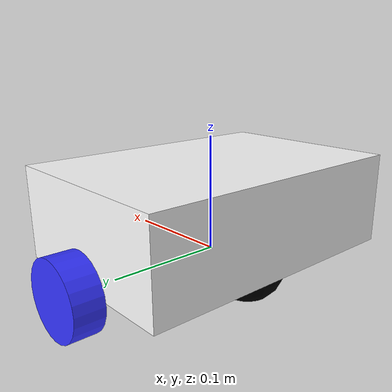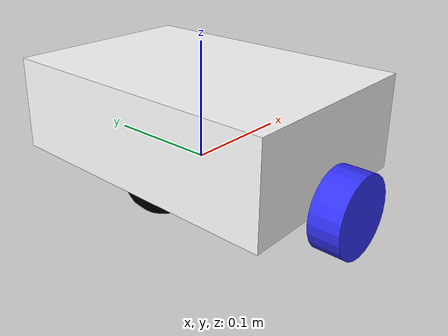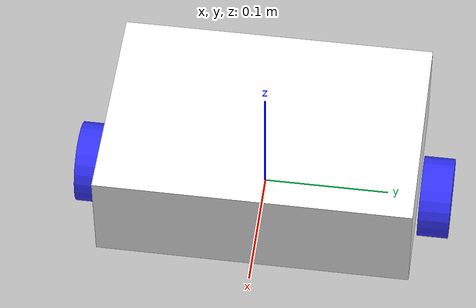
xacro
<?xml version="1.0"?>
<robot xmlns:xacro="http://www.ros.org/wiki/xacro" >

    <xacro:include filename="inertial_macros.xacro" />

    <material name="white">
        <color rgba="1 1 1 1" />
    </material>

    <material name="orange">
        <color rgba="1 0.3 0.1 1"/>
    </material>

    <material name="blue">
        <color rgba="0.2 0.2 1 1"/>
    </material>

    <material name="black">
        <color rgba="0 0 0 1"/>
    </material>

    <material name="red">
        <color rgba="1 0 0 1"/>
    </material>

    <!-- BASE LINK -->

    <link name="base_link">

    </link>

    <!-- BASE_FOOTPRINT LINK -->

    <joint name="base_footprint_joint" type="fixed">
        <parent link="base_link"/>
        <child link="base_footprint"/>
        <origin xyz="0 0 0" rpy="0 0 0"/>
    </joint>

    <link name="base_footprint">
    </link>

    <!-- CHASSIS LINK -->

    <joint name="chassis_joint" type="fixed">
        <parent link="base_link"/>
        <child link="chassis"/>
        <origin xyz="-0.085 0 0"/>
    </joint>

    <link name="chassis">
        <visual>
            <origin xyz="0.085 0 0.04"/>
            <geometry>
                <box size="0.17 0.25 0.08"/>
            </geometry>
            <material name="white"/>
        </visual>
        <collision>
            <origin xyz="0.085 0 0.04"/>
            <geometry>
                <box size="0.17 0.25 0.08"/>
            </geometry>
        </collision>
        <xacro:inertial_box mass="0.5" x="0.17" y="0.25" z="0.08">
            <origin xyz="0.085 0 0.04" rpy="0 0 0"/>
        </xacro:inertial_box>
    </link>

    <!-- LEFT WHEEL LINK -->

    <joint name="left_wheel_joint" type="continuous">
        <parent link="base_link"/>
        <child link="left_wheel"/>
        <origin xyz="0 0.1395 0" rpy="-${pi/2} 0 0" />
        <axis xyz="0 0 1"/>
    </joint>

    <link name="left_wheel">
        <visual>
            <geometry>
                <cylinder radius="0.0325" length="0.025"/>
            </geometry>
            <material name="blue"/>
        </visual>
        <collision>
            <geometry>
                <cylinder radius="0.0325" length="0.025"/>
            </geometry>
        </collision>
        <xacro:inertial_cylinder mass="0.1" length="0.025" radius="0.0325">
            <origin xyz="0 0 0" rpy="0 0 0"/>
        </xacro:inertial_cylinder>
    </link>

    <!-- RIGHT WHEEL LINK -->

    <joint name="right_wheel_joint" type="continuous">
        <parent link="base_link"/>
        <child link="right_wheel"/>
        <origin xyz="0 -0.1395 0" rpy="${pi/2} 0 0" />
        <axis xyz="0 0 -1"/>
    </joint>

    <link name="right_wheel">
        <visual>
            <geometry>
                <cylinder radius="0.0325" length="0.025"/>
            </geometry>
            <material name="blue"/>
        </visual>
        <collision>
            <geometry>
                <cylinder radius="0.0325" length="0.025"/>
            </geometry>
        </collision>
        <xacro:inertial_cylinder mass="0.1" length="0.025" radius="0.0325">
            <origin xyz="0 0 0" rpy="0 0 0"/>
        </xacro:inertial_cylinder>
    </link>

    <!-- CASTER WHEEL LINK -->

    <joint name="caster_wheel_before_joint" type="fixed">
        <parent link="chassis"/>
        <child link="caster_wheel_before"/>
        <origin xyz="0.13 0 0"/>
    </joint>

    <link name="caster_wheel_before">
        <visual>
            <geometry>
                <sphere radius="0.0325"/>
            </geometry>
            <material name="black"/>
        </visual>
        <collision>
            <geometry>
                <sphere radius="0.0325"/>
            </geometry>
        </collision>
        <xacro:inertial_sphere mass="0.1" radius="0.0325">
            <origin xyz="0 0 0" rpy="0 0 0"/>
        </xacro:inertial_sphere>
    </link>

    <joint name="caster_wheel_after_joint" type="fixed">
        <parent link="chassis"/>
        <child link="caster_wheel_after"/>
        <origin xyz="0.04 0 0"/>
    </joint>

    <link name="caster_wheel_after">
        <visual>
            <geometry>
                <sphere radius="0.0325"/>
            </geometry>
            <material name="black"/>
        </visual>
        <collision>
            <geometry>
                <sphere radius="0.0325"/>
            </geometry>
        </collision>
        <xacro:inertial_sphere mass="0.1" radius="0.0325">
            <origin xyz="0 0 0" rpy="0 0 0"/>
        </xacro:inertial_sphere>
    </link>

</robot>
